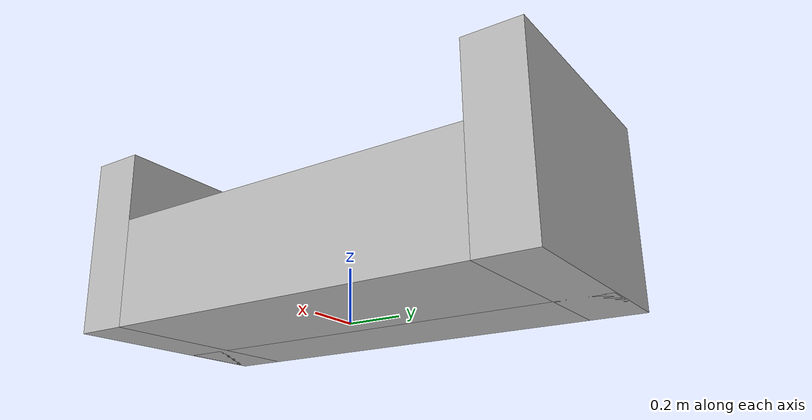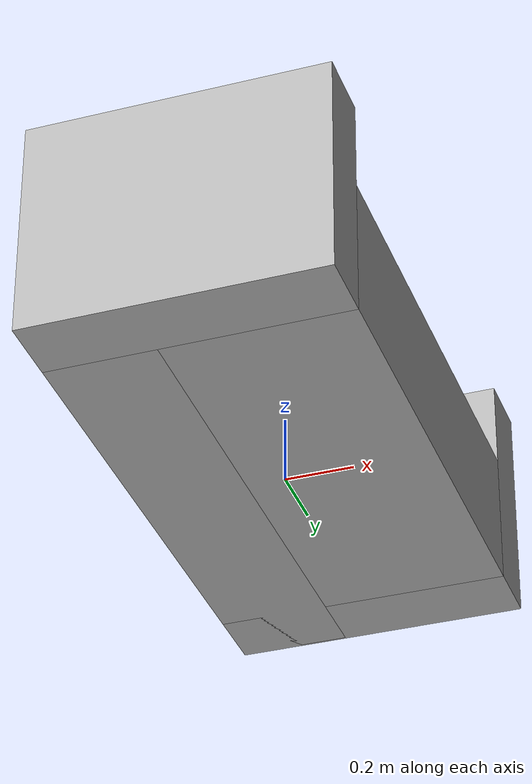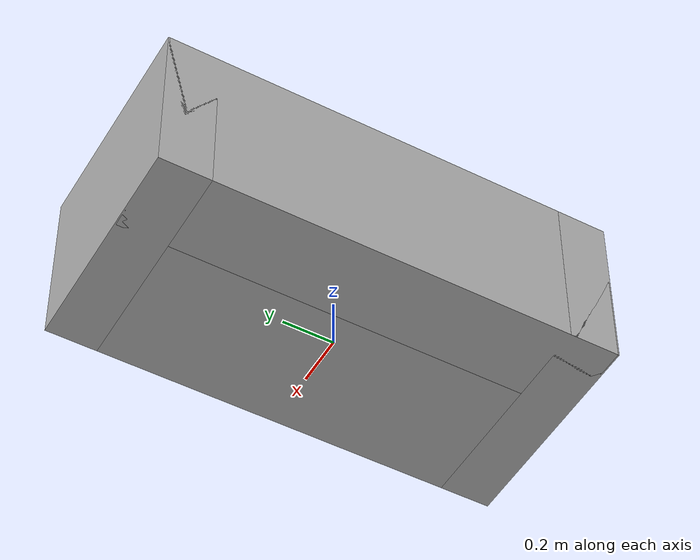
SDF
<?xml version="1.0"?>
<sdf version="1.6">
  <model name="impuls/couch_long">
    <link name="back">
      <collision name="back_col">
        <geometry>
          <box>
            <size>0.325 1.79 0.67</size>
          </box>
        </geometry>
      </collision>
      <visual name="back_vis">
        <geometry>
          <box>
            <size>0.325 1.79 0.67</size>
          </box>
        </geometry>
      </visual>
      <pose>-0.275 0.0 0.335 0 0 0</pose>
    </link>
    <link name="side_left">
     <collision name="side_left_col">
        <geometry>
          <box>
            <size>0.875 0.20 0.67</size>
          </box>
        </geometry>
      </collision>
      <visual name="side_left_vis">
        <geometry>
          <box>
            <size>0.875 0.20 0.67</size>
          </box>
        </geometry>
      </visual>
      <pose>0 -0.8 0.335 0 0 0</pose>
    </link>
    <link name="side_right">
      <collision name="side_right_col">
        <geometry>
          <box>
            <size>0.875 0.20 0.67</size>
          </box>
        </geometry>
      </collision>
      <visual name="side_right_vis">
        <geometry>
          <box>
            <size>0.875 0.20 0.67</size>
          </box>
        </geometry>
      </visual>
    <pose>0 0.8 0.335 0 0 0</pose>
    </link>
    <link name="seat">
      <collision name="seat_col">
        <geometry>
          <box>
            <size>0.55 1.4 0.405</size>
          </box>
        </geometry>
      </collision>
      <visual name="seat_vis">
        <geometry>
          <box>
              <size>0.55 1.4 0.405</size>
          </box>
        </geometry>
      </visual>
      <pose>0.1625 0 0.2025 0 0 0</pose>
    </link>
    <link name="on_top_of">
      <virtual_volume name="on_top_of_vv">
        <geometry>
          <box>
            <size>0.3 1 0.2</size>
          </box>
        </geometry>
        <pose>0.2 0.0 0.62 0 0 0</pose>
      </virtual_volume>
    </link>
    <link name="in_front_of">
      <virtual_volume name="in_front_of_vv">
        <geometry>
          <box>
            <size>0.2 1.6 0.01</size>
          </box>
        </geometry>
        <pose>0.65 0.0 0.005 0 0 0</pose>
      </virtual_volume>
    </link>
    <static>true</static>
  </model>
</sdf>
